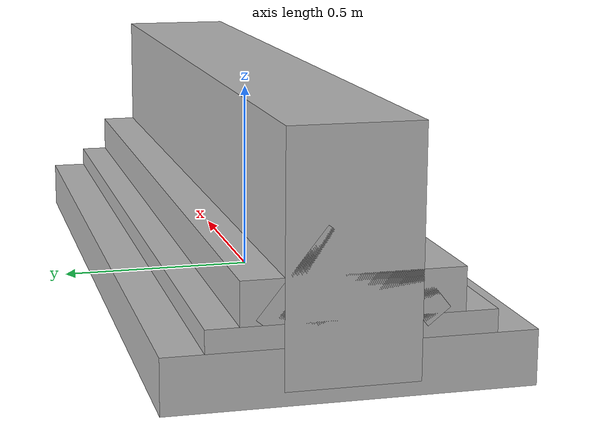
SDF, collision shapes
<?xml version="1.0" ?>
<sdf version="1.5">
  <model name="jersey_barrier">
    <static>true</static>
    <link name="link">
      <visual name="visual">
        <geometry>
          <mesh>
            <uri>meshes/jersey_barrier.dae</uri>
            <scale> 0.5 1 1 </scale>
          </mesh>
        </geometry>
      </visual>
      <collision name="upright">
        <pose>0 0 0.285 0 0 0</pose>
        <geometry>
          <box>
            <size>2.03271 0.3063 0.5715</size>
          </box>
        </geometry>
      </collision>
      <collision name="base">
        <pose>0 0 0.032258 0 0 0</pose>
        <geometry>
          <box>
            <size>2.03271 0.8414 0.129032</size>
          </box>
        </geometry>
      </collision>
      <collision name="base2">
        <pose>0 0 0.1 0 0 0</pose>
        <geometry>
          <box>
            <size>2.03271 0.65 0.1</size>
          </box>
        </geometry>
      </collision>
      <collision name="base3">
        <pose>0 0 0.2 0 0 0</pose>
        <geometry>
          <box>
            <size>2.03271 0.5 0.1</size>
          </box>
        </geometry>
      </collision>
      <collision name="left-angle">
        <pose>0 -0.112 0.2401 0.9 0 0</pose>
        <geometry>
          <box>
            <size>2.03271 0.25 0.064516</size>
          </box>
        </geometry>
      </collision>
      <collision name="right-angle">
        <pose>0 0.112 0.2401 -0.9 0 0</pose>
        <geometry>
          <box>
            <size>2.03271 0.25 0.064516</size>
          </box>
        </geometry>
      </collision>
    </link>
  </model>
</sdf>
